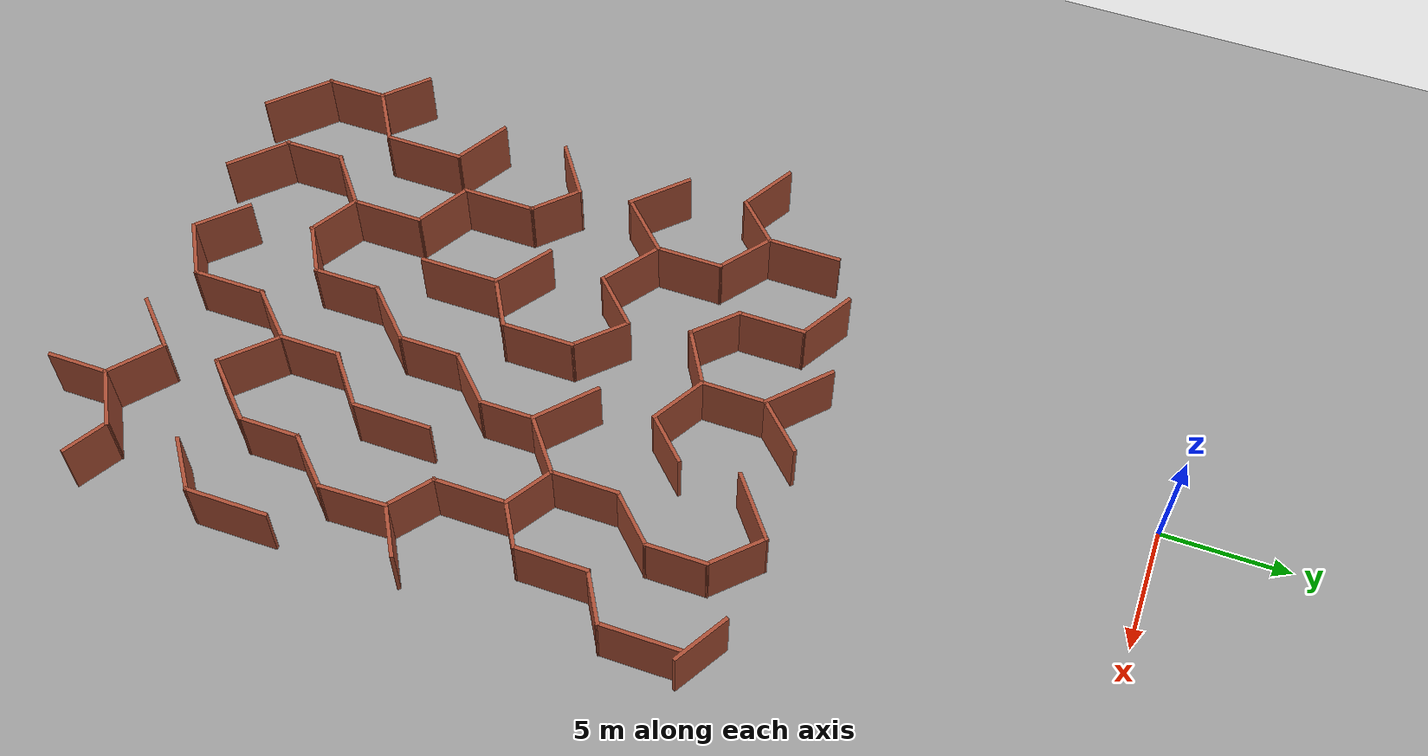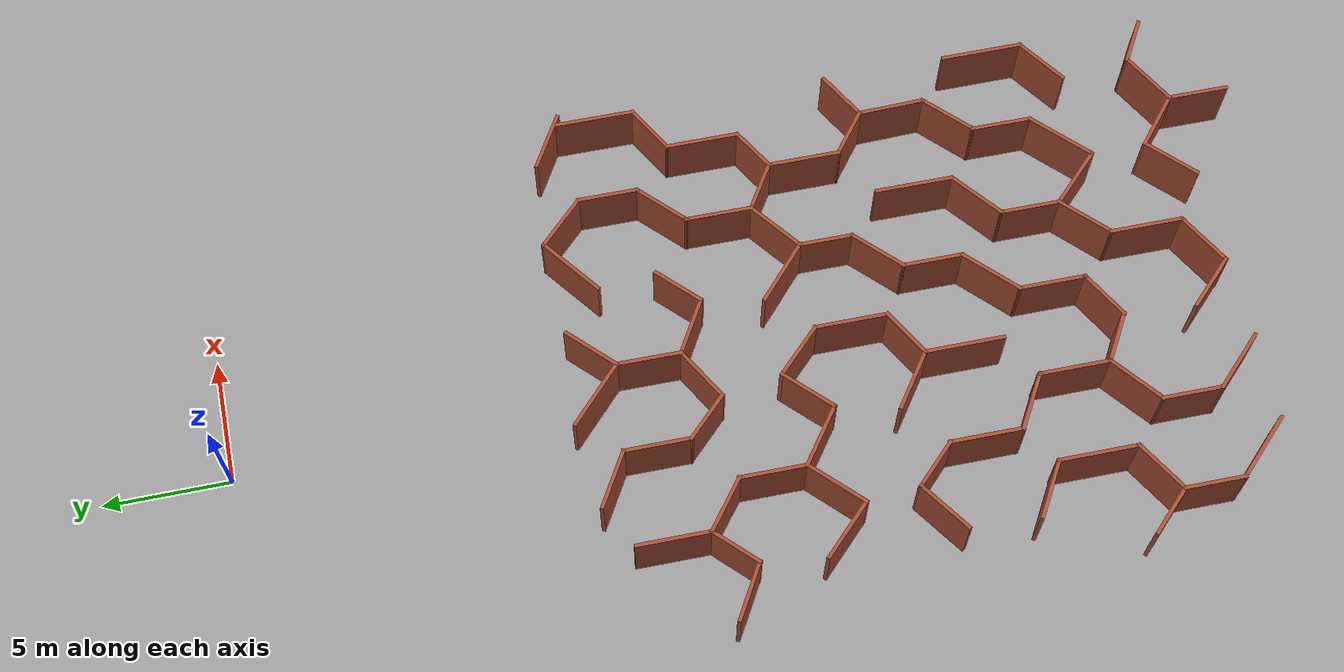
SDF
<sdf version="1.6">
 <world name="default">
  <model name="maze_rect_3">
   <pose>4e-06 -9.9e-05 0 0 -0 1.57001</pose>
   <link name="Wall_453">
    <collision name="Wall_453_Collision">
     <geometry><box><size>2.5 0.15 2.5</size></box></geometry>
     <pose>0 0 1.25 0 -0 0</pose>
    </collision>
    <visual name="Wall_453_Visual">
     <pose>0 0 1.25 0 -0 0</pose>
     <geometry><box><size>2.5 0.15 2.5</size></box></geometry>
     <material>
      <script><uri>file://media/materials/scripts/gazebo.material</uri><name>Gazebo/Bricks</name></script>
      <ambient>1 1 1 1</ambient>
     </material>
     <meta><layer>0</layer></meta>
    </visual>
    <pose>-14.284 -10.9723 0 0 -0 1.0472</pose>
   </link>
   <link name="Wall_460">
    <collision name="Wall_460_Collision">
     <geometry><box><size>3.25 0.15 2.5</size></box></geometry>
     <pose>0 0 1.25 0 -0 0</pose>
    </collision>
    <visual name="Wall_460_Visual">
     <pose>0 0 1.25 0 -0 0</pose>
     <geometry><box><size>3.25 0.15 2.5</size></box></geometry>
     <material>
      <script><uri>file://media/materials/scripts/gazebo.material</uri><name>Gazebo/Bricks</name></script>
      <ambient>1 1 1 1</ambient>
     </material>
     <meta><layer>0</layer></meta>
    </visual>
    <pose>-16.3331 -11.6233 0 0 -0 3.14159</pose>
   </link>
   <link name="Wall_461">
    <collision name="Wall_461_Collision">
     <geometry><box><size>2.25 0.15 2.5</size></box></geometry>
     <pose>0 0 1.25 0 -0 0</pose>
    </collision>
    <visual name="Wall_461_Visual">
     <pose>0 0 1.25 0 -0 0</pose>
     <geometry><box><size>2.25 0.15 2.5</size></box></geometry>
     <material>
      <script><uri>file://media/materials/scripts/gazebo.material</uri><name>Gazebo/Bricks</name></script>
      <ambient>1 1 1 1</ambient>
     </material>
     <meta><layer>0</layer></meta>
    </visual>
    <pose>-18.4081 -10.714 0 0 -0 2.0944</pose>
   </link>
   <link name="Wall_462">
    <collision name="Wall_462_Collision">
     <geometry><box><size>3 0.15 2.5</size></box></geometry>
     <pose>0 0 1.25 0 -0 0</pose>
    </collision>
    <visual name="Wall_462_Visual">
     <pose>0 0 1.25 0 -0 0</pose>
     <geometry><box><size>3 0.15 2.5</size></box></geometry>
     <material>
      <script><uri>file://media/materials/scripts/gazebo.material</uri><name>Gazebo/Bricks</name></script>
      <ambient>1 1 1 1</ambient>
     </material>
     <meta><layer>0</layer></meta>
    </visual>
    <pose>-20.3581 -9.80467 0 0 -0 3.14159</pose>
   </link>
   <link name="Wall_463">
    <collision name="Wall_463_Collision">
     <geometry><box><size>2.01531 0.15 2.5</size></box></geometry>
     <pose>0 0 1.25 0 -0 0</pose>
    </collision>
    <visual name="Wall_463_Visual">
     <pose>0 0 1.25 0 -0 0</pose>
     <geometry><box><size>2.01531 0.15 2.5</size></box></geometry>
     <material>
      <script><uri>file://media/materials/scripts/gazebo.material</uri><name>Gazebo/Bricks</name></script>
      <ambient>1 1 1 1</ambient>
     </material>
     <meta><layer>0</layer></meta>
    </visual>
    <pose>-22.2607 -9.0036 0 0 -0 2.10844</pose>
   </link>
   <link name="Wall_464">
    <collision name="Wall_464_Collision">
     <geometry><box><size>2.20335 0.15 2.5</size></box></geometry>
     <pose>0 0 1.25 0 -0 0</pose>
    </collision>
    <visual name="Wall_464_Visual">
     <pose>0 0 1.25 0 -0 0</pose>
     <geometry><box><size>2.20335 0.15 2.5</size></box></geometry>
     <material>
      <script><uri>file://media/materials/scripts/gazebo.material</uri><name>Gazebo/Bricks</name></script>
      <ambient>1 1 1 1</ambient>
     </material>
     <meta><layer>0</layer></meta>
    </visual>
    <pose>-22.1941 -7.33195 0 0 -0 1.01213</pose>
   </link>
   <link name="Wall_465">
    <collision name="Wall_465_Collision">
     <geometry><box><size>2.75 0.15 2.5</size></box></geometry>
     <pose>0 0 1.25 0 -0 0</pose>
    </collision>
    <visual name="Wall_465_Visual">
     <pose>0 0 1.25 0 -0 0</pose>
     <geometry><box><size>2.75 0.15 2.5</size></box></geometry>
     <material>
      <script><uri>file://media/materials/scripts/gazebo.material</uri><name>Gazebo/Bricks</name></script>
      <ambient>1 1 1 1</ambient>
     </material>
     <meta><layer>0</layer></meta>
    </visual>
    <pose>-20.3499 -6.46136 0 0 -0 0</pose>
   </link>
   <link name="Wall_466">
    <collision name="Wall_466_Collision">
     <geometry><box><size>2.5 0.15 2.5</size></box></geometry>
     <pose>0 0 1.25 0 -0 0</pose>
    </collision>
    <visual name="Wall_466_Visual">
     <pose>0 0 1.25 0 -0 0</pose>
     <geometry><box><size>2.5 0.15 2.5</size></box></geometry>
     <material>
      <script><uri>file://media/materials/scripts/gazebo.material</uri><name>Gazebo/Bricks</name></script>
      <ambient>1 1 1 1</ambient>
     </material>
     <meta><layer>0</layer></meta>
    </visual>
    <pose>-18.2191 -7.29221 0 0 -0 -0.785398</pose>
   </link>
   <link name="Wall_467">
    <collision name="Wall_467_Collision">
     <geometry><box><size>2.5 0.15 2.5</size></box></geometry>
     <pose>0 0 1.25 0 -0 0</pose>
    </collision>
    <visual name="Wall_467_Visual">
     <pose>0 0 1.25 0 -0 0</pose>
     <geometry><box><size>2.5 0.15 2.5</size></box></geometry>
     <material>
      <script><uri>file://media/materials/scripts/gazebo.material</uri><name>Gazebo/Bricks</name></script>
      <ambient>1 1 1 1</ambient>
     </material>
     <meta><layer>0</layer></meta>
    </visual>
    <pose>-16.2132 -8.12307 0 0 -0 0</pose>
   </link>
   <link name="Wall_468">
    <collision name="Wall_468_Collision">
     <geometry><box><size>2.5 0.15 2.5</size></box></geometry>
     <pose>0 0 1.25 0 -0 0</pose>
    </collision>
    <visual name="Wall_468_Visual">
     <pose>0 0 1.25 0 -0 0</pose>
     <geometry><box><size>2.5 0.15 2.5</size></box></geometry>
     <material>
      <script><uri>file://media/materials/scripts/gazebo.material</uri><name>Gazebo/Bricks</name></script>
      <ambient>1 1 1 1</ambient>
     </material>
     <meta><layer>0</layer></meta>
    </visual>
    <pose>-14.2074 -7.29221 0 0 -0 0.785398</pose>
   </link>
   <link name="Wall_482">
    <collision name="Wall_482_Collision">
     <geometry><box><size>2.97979 0.15 2.5</size></box></geometry>
     <pose>0 0 1.25 0 -0 0</pose>
    </collision>
    <visual name="Wall_482_Visual">
     <pose>0 0 1.25 0 -0 0</pose>
     <geometry><box><size>2.97979 0.15 2.5</size></box></geometry>
     <material>
      <script><uri>file://media/materials/scripts/gazebo.material</uri><name>Gazebo/Bricks</name></script>
      <ambient>1 1 1 1</ambient>
     </material>
     <meta><layer>0</layer></meta>
    </visual>
    <pose>-14.2385 -5.33934 0 0 -0 -0.915727</pose>
   </link>
   <link name="Wall_485">
    <collision name="Wall_485_Collision">
     <geometry><box><size>2.25 0.15 2.5</size></box></geometry>
     <pose>0 0 1.25 0 -0 0</pose>
    </collision>
    <visual name="Wall_485_Visual">
     <pose>0 0 1.25 0 -0 0</pose>
     <geometry><box><size>2.25 0.15 2.5</size></box></geometry>
     <material>
      <script><uri>file://media/materials/scripts/gazebo.material</uri><name>Gazebo/Bricks</name></script>
      <ambient>1 1 1 1</ambient>
     </material>
     <meta><layer>0</layer></meta>
    </visual>
    <pose>-18.1705 -3.68646 0 0 -0 2.35619</pose>
   </link>
   <link name="Wall_486">
    <collision name="Wall_486_Collision">
     <geometry><box><size>2.5 0.15 2.5</size></box></geometry>
     <pose>0 0 1.25 0 -0 0</pose>
    </collision>
    <visual name="Wall_486_Visual">
     <pose>0 0 1.25 0 -0 0</pose>
     <geometry><box><size>2.5 0.15 2.5</size></box></geometry>
     <material>
      <script><uri>file://media/materials/scripts/gazebo.material</uri><name>Gazebo/Bricks</name></script>
      <ambient>1 1 1 1</ambient>
     </material>
     <meta><layer>0</layer></meta>
    </visual>
    <pose>-18.3255 -1.92642 0 0 -0 1.0472</pose>
   </link>
   <link name="Wall_487">
    <collision name="Wall_487_Collision">
     <geometry><box><size>2.5 0.15 2.5</size></box></geometry>
     <pose>0 0 1.25 0 -0 0</pose>
    </collision>
    <visual name="Wall_487_Visual">
     <pose>0 0 1.25 0 -0 0</pose>
     <geometry><box><size>2.5 0.15 2.5</size></box></geometry>
     <material>
      <script><uri>file://media/materials/scripts/gazebo.material</uri><name>Gazebo/Bricks</name></script>
      <ambient>1 1 1 1</ambient>
     </material>
     <meta><layer>0</layer></meta>
    </visual>
    <pose>-18.3255 0.108739 0 0 -0 2.0944</pose>
   </link>
   <link name="Wall_488">
    <collision name="Wall_488_Collision">
     <geometry><box><size>2.25 0.15 2.5</size></box></geometry>
     <pose>0 0 1.25 0 -0 0</pose>
    </collision>
    <visual name="Wall_488_Visual">
     <pose>0 0 1.25 0 -0 0</pose>
     <geometry><box><size>2.25 0.15 2.5</size></box></geometry>
     <material>
      <script><uri>file://media/materials/scripts/gazebo.material</uri><name>Gazebo/Bricks</name></script>
      <ambient>1 1 1 1</ambient>
     </material>
     <meta><layer>0</layer></meta>
    </visual>
    <pose>-18.1705 1.86878 0 0 -0 0.785398</pose>
   </link>
   <link name="Wall_489">
    <collision name="Wall_489_Collision">
     <geometry><box><size>2.75 0.15 2.5</size></box></geometry>
     <pose>0 0 1.25 0 -0 0</pose>
    </collision>
    <visual name="Wall_489_Visual">
     <pose>0 0 1.25 0 -0 0</pose>
     <geometry><box><size>2.75 0.15 2.5</size></box></geometry>
     <material>
      <script><uri>file://media/materials/scripts/gazebo.material</uri><name>Gazebo/Bricks</name></script>
      <ambient>1 1 1 1</ambient>
     </material>
     <meta><layer>0</layer></meta>
    </visual>
    <pose>-16.1281 2.61124 0 0 -0 0</pose>
   </link>
   <link name="Wall_490">
    <collision name="Wall_490_Collision">
     <geometry><box><size>2.5 0.15 2.5</size></box></geometry>
     <pose>0 0 1.25 0 -0 0</pose>
    </collision>
    <visual name="Wall_490_Visual">
     <pose>0 0 1.25 0 -0 0</pose>
     <geometry><box><size>2.5 0.15 2.5</size></box></geometry>
     <material>
      <script><uri>file://media/materials/scripts/gazebo.material</uri><name>Gazebo/Bricks</name></script>
      <ambient>1 1 1 1</ambient>
     </material>
     <meta><layer>0</layer></meta>
    </visual>
    <pose>-14.2406 3.62882 0 0 -0 1.0472</pose>
   </link>
   <link name="Wall_503">
    <collision name="Wall_503_Collision">
     <geometry><box><size>2.5 0.15 2.5</size></box></geometry>
     <pose>0 0 1.25 0 -0 0</pose>
    </collision>
    <visual name="Wall_503_Visual">
     <pose>0 0 1.25 0 -0 0</pose>
     <geometry><box><size>2.5 0.15 2.5</size></box></geometry>
     <material>
      <script><uri>file://media/materials/scripts/gazebo.material</uri><name>Gazebo/Bricks</name></script>
      <ambient>1 1 1 1</ambient>
     </material>
     <meta><layer>0</layer></meta>
    </visual>
    <pose>-14.3964 -1.748 0 0 -0 2.35619</pose>
   </link>
   <link name="Wall_504">
    <collision name="Wall_504_Collision">
     <geometry><box><size>2.66072 0.15 2.5</size></box></geometry>
     <pose>0 0 1.25 0 -0 0</pose>
    </collision>
    <visual name="Wall_504_Visual">
     <pose>0 0 1.25 0 -0 0</pose>
     <geometry><box><size>2.66072 0.15 2.5</size></box></geometry>
     <material>
      <script><uri>file://media/materials/scripts/gazebo.material</uri><name>Gazebo/Bricks</name></script>
      <ambient>1 1 1 1</ambient>
     </material>
     <meta><layer>0</layer></meta>
    </visual>
    <pose>-16.4826 -0.912996 0 0 -0 3.13828</pose>
   </link>
   <link name="Wall_506">
    <collision name="Wall_506_Collision">
     <geometry><box><size>3.04862 0.15 2.5</size></box></geometry>
     <pose>0 0 1.25 0 -0 0</pose>
    </collision>
    <visual name="Wall_506_Visual">
     <pose>0 0 1.25 0 -0 0</pose>
     <geometry><box><size>3.04862 0.15 2.5</size></box></geometry>
     <material>
      <script><uri>file://media/materials/scripts/gazebo.material</uri><name>Gazebo/Bricks</name></script>
      <ambient>1 1 1 1</ambient>
     </material>
     <meta><layer>0</layer></meta>
    </visual>
    <pose>-14.2391 0.142993 0 0 -0 -2.3211</pose>
   </link>
   <link name="Wall_533">
    <collision name="Wall_533_Collision">
     <geometry><box><size>2.25 0.15 2.5</size></box></geometry>
     <pose>0 0 1.25 0 -0 0</pose>
    </collision>
    <visual name="Wall_533_Visual">
     <pose>0 0 1.25 0 -0 0</pose>
     <geometry><box><size>2.25 0.15 2.5</size></box></geometry>
     <material>
      <script><uri>file://media/materials/scripts/gazebo.material</uri><name>Gazebo/Bricks</name></script>
      <ambient>1 1 1 1</ambient>
     </material>
     <meta><layer>0</layer></meta>
    </visual>
    <pose>-26.2666 -10.6938 0 0 -0 2.0944</pose>
   </link>
   <link name="Wall_534">
    <collision name="Wall_534_Collision">
     <geometry><box><size>2.14672 0.15 2.5</size></box></geometry>
     <pose>0 0 1.25 0 -0 0</pose>
    </collision>
    <visual name="Wall_534_Visual">
     <pose>0 0 1.25 0 -0 0</pose>
     <geometry><box><size>2.14672 0.15 2.5</size></box></geometry>
     <material>
      <script><uri>file://media/materials/scripts/gazebo.material</uri><name>Gazebo/Bricks</name></script>
      <ambient>1 1 1 1</ambient>
     </material>
     <meta><layer>0</layer></meta>
    </visual>
    <pose>-26.1824 -8.99348 0 0 -0 0.914495</pose>
   </link>
   <link name="Wall_535">
    <collision name="Wall_535_Collision">
     <geometry><box><size>3 0.15 2.5</size></box></geometry>
     <pose>0 0 1.25 0 -0 0</pose>
    </collision>
    <visual name="Wall_535_Visual">
     <pose>0 0 1.25 0 -0 0</pose>
     <geometry><box><size>3 0.15 2.5</size></box></geometry>
     <material>
      <script><uri>file://media/materials/scripts/gazebo.material</uri><name>Gazebo/Bricks</name></script>
      <ambient>1 1 1 1</ambient>
     </material>
     <meta><layer>0</layer></meta>
    </visual>
    <pose>-24.1482 -8.20252 0 0 -0 0</pose>
   </link>
   <link name="Wall_537">
    <collision name="Wall_537_Collision">
     <geometry><box><size>2.5 0.15 2.5</size></box></geometry>
     <pose>0 0 1.25 0 -0 0</pose>
    </collision>
    <visual name="Wall_537_Visual">
     <pose>0 0 1.25 0 -0 0</pose>
     <geometry><box><size>2.5 0.15 2.5</size></box></geometry>
     <material>
      <script><uri>file://media/materials/scripts/gazebo.material</uri><name>Gazebo/Bricks</name></script>
      <ambient>1 1 1 1</ambient>
     </material>
     <meta><layer>0</layer></meta>
    </visual>
    <pose>-38.4579 0.179297 0 0 -0 -2.35619</pose>
   </link>
   <link name="Wall_538">
    <collision name="Wall_538_Collision">
     <geometry><box><size>2.5 0.15 2.5</size></box></geometry>
     <pose>0 0 1.25 0 -0 0</pose>
    </collision>
    <visual name="Wall_538_Visual">
     <pose>0 0 1.25 0 -0 0</pose>
     <geometry><box><size>2.5 0.15 2.5</size></box></geometry>
     <material>
      <script><uri>file://media/materials/scripts/gazebo.material</uri><name>Gazebo/Bricks</name></script>
      <ambient>1 1 1 1</ambient>
     </material>
     <meta><layer>0</layer></meta>
    </visual>
    <pose>-38.7013 -1.66913 0 0 -0 -1.0472</pose>
   </link>
   <link name="Wall_539">
    <collision name="Wall_539_Collision">
     <geometry><box><size>3 0.15 2.5</size></box></geometry>
     <pose>0 0 1.25 0 -0 0</pose>
    </collision>
    <visual name="Wall_539_Visual">
     <pose>0 0 1.25 0 -0 0</pose>
     <geometry><box><size>3 0.15 2.5</size></box></geometry>
     <material>
      <script><uri>file://media/materials/scripts/gazebo.material</uri><name>Gazebo/Bricks</name></script>
      <ambient>1 1 1 1</ambient>
     </material>
     <meta><layer>0</layer></meta>
    </visual>
    <pose>-36.6888 -2.68671 0 0 -0 0</pose>
   </link>
   <link name="Wall_540">
    <collision name="Wall_540_Collision">
     <geometry><box><size>2.5 0.15 2.5</size></box></geometry>
     <pose>0 0 1.25 0 -0 0</pose>
    </collision>
    <visual name="Wall_540_Visual">
     <pose>0 0 1.25 0 -0 0</pose>
     <geometry><box><size>2.5 0.15 2.5</size></box></geometry>
     <material>
      <script><uri>file://media/materials/scripts/gazebo.material</uri><name>Gazebo/Bricks</name></script>
      <ambient>1 1 1 1</ambient>
     </material>
     <meta><layer>0</layer></meta>
    </visual>
    <pose>-34.4329 -3.51756 0 0 -0 -0.785398</pose>
   </link>
   <link name="Wall_541">
    <collision name="Wall_541_Collision">
     <geometry><box><size>2.75 0.15 2.5</size></box></geometry>
     <pose>0 0 1.25 0 -0 0</pose>
    </collision>
    <visual name="Wall_541_Visual">
     <pose>0 0 1.25 0 -0 0</pose>
     <geometry><box><size>2.75 0.15 2.5</size></box></geometry>
     <material>
      <script><uri>file://media/materials/scripts/gazebo.material</uri><name>Gazebo/Bricks</name></script>
      <ambient>1 1 1 1</ambient>
     </material>
     <meta><layer>0</layer></meta>
    </visual>
    <pose>-34.5213 -5.26765 0 0 -0 -2.35619</pose>
   </link>
   <link name="Wall_542">
    <collision name="Wall_542_Collision">
     <geometry><box><size>3 0.15 2.5</size></box></geometry>
     <pose>0 0 1.25 0 -0 0</pose>
    </collision>
    <visual name="Wall_542_Visual">
     <pose>0 0 1.25 0 -0 0</pose>
     <geometry><box><size>3 0.15 2.5</size></box></geometry>
     <material>
      <script><uri>file://media/materials/scripts/gazebo.material</uri><name>Gazebo/Bricks</name></script>
      <ambient>1 1 1 1</ambient>
     </material>
     <meta><layer>0</layer></meta>
    </visual>
    <pose>-34.4329 -7.19452 0 0 -0 -0.785398</pose>
   </link>
   <link name="Wall_543">
    <collision name="Wall_543_Collision">
     <geometry><box><size>2.5 0.15 2.5</size></box></geometry>
     <pose>0 0 1.25 0 -0 0</pose>
    </collision>
    <visual name="Wall_543_Visual">
     <pose>0 0 1.25 0 -0 0</pose>
     <geometry><box><size>2.5 0.15 2.5</size></box></geometry>
     <material>
      <script><uri>file://media/materials/scripts/gazebo.material</uri><name>Gazebo/Bricks</name></script>
      <ambient>1 1 1 1</ambient>
     </material>
     <meta><layer>0</layer></meta>
    </visual>
    <pose>-32.2503 -8.20215 0 0 -0 0</pose>
   </link>
   <link name="Wall_544">
    <collision name="Wall_544_Collision">
     <geometry><box><size>2.5 0.15 2.5</size></box></geometry>
     <pose>0 0 1.25 0 -0 0</pose>
    </collision>
    <visual name="Wall_544_Visual">
     <pose>0 0 1.25 0 -0 0</pose>
     <geometry><box><size>2.5 0.15 2.5</size></box></geometry>
     <material>
      <script><uri>file://media/materials/scripts/gazebo.material</uri><name>Gazebo/Bricks</name></script>
      <ambient>1 1 1 1</ambient>
     </material>
     <meta><layer>0</layer></meta>
    </visual>
    <pose>-30.2444 -9.033 0 0 -0 -0.785398</pose>
   </link>
   <link name="Wall_545">
    <collision name="Wall_545_Collision">
     <geometry><box><size>2.77322 0.15 2.5</size></box></geometry>
     <pose>0 0 1.25 0 -0 0</pose>
    </collision>
    <visual name="Wall_545_Visual">
     <pose>0 0 1.25 0 -0 0</pose>
     <geometry><box><size>2.77322 0.15 2.5</size></box></geometry>
     <material>
      <script><uri>file://media/materials/scripts/gazebo.material</uri><name>Gazebo/Bricks</name></script>
      <ambient>1 1 1 1</ambient>
     </material>
     <meta><layer>0</layer></meta>
    </visual>
    <pose>-28.1026 -9.82414 0 0 -0 0.030278</pose>
   </link>
   <link name="Wall_547">
    <collision name="Wall_547_Collision">
     <geometry><box><size>3.15852 0.15 2.5</size></box></geometry>
     <pose>0 0 1.25 0 -0 0</pose>
    </collision>
    <visual name="Wall_547_Visual">
     <pose>0 0 1.25 0 -0 0</pose>
     <geometry><box><size>3.15852 0.15 2.5</size></box></geometry>
     <material>
      <script><uri>file://media/materials/scripts/gazebo.material</uri><name>Gazebo/Bricks</name></script>
      <ambient>1 1 1 1</ambient>
     </material>
     <meta><layer>0</layer></meta>
    </visual>
    <pose>-28.1709 -6.21856 0 0 -0 3.14159</pose>
   </link>
   <link name="Wall_548">
    <collision name="Wall_548_Collision">
     <geometry><box><size>2.56699 0.15 2.5</size></box></geometry>
     <pose>0 0 1.25 0 -0 0</pose>
    </collision>
    <visual name="Wall_548_Visual">
     <pose>0 0 1.25 0 -0 0</pose>
     <geometry><box><size>2.56699 0.15 2.5</size></box></geometry>
     <material>
      <script><uri>file://media/materials/scripts/gazebo.material</uri><name>Gazebo/Bricks</name></script>
      <ambient>1 1 1 1</ambient>
     </material>
     <meta><layer>0</layer></meta>
    </visual>
    <pose>-30.4865 -5.28349 0 0 -0 2.25685</pose>
   </link>
   <link name="Wall_549">
    <collision name="Wall_549_Collision">
     <geometry><box><size>2.5 0.15 2.5</size></box></geometry>
     <pose>0 0 1.25 0 -0 0</pose>
    </collision>
    <visual name="Wall_549_Visual">
     <pose>0 0 1.25 0 -0 0</pose>
     <geometry><box><size>2.5 0.15 2.5</size></box></geometry>
     <material>
      <script><uri>file://media/materials/scripts/gazebo.material</uri><name>Gazebo/Bricks</name></script>
      <ambient>1 1 1 1</ambient>
     </material>
     <meta><layer>0</layer></meta>
    </visual>
    <pose>-32.4271 -4.34841 0 0 -0 3.14159</pose>
   </link>
   <link name="Wall_551">
    <collision name="Wall_551_Collision">
     <geometry><box><size>2.38551 0.15 2.5</size></box></geometry>
     <pose>0 0 1.25 0 -0 0</pose>
    </collision>
    <visual name="Wall_551_Visual">
     <pose>0 0 1.25 0 -0 0</pose>
     <geometry><box><size>2.38551 0.15 2.5</size></box></geometry>
     <material>
      <script><uri>file://media/materials/scripts/gazebo.material</uri><name>Gazebo/Bricks</name></script>
      <ambient>1 1 1 1</ambient>
     </material>
     <meta><layer>0</layer></meta>
    </visual>
    <pose>-34.5618 -10.7081 0 0 -0 -0.950197</pose>
   </link>
   <link name="Wall_557">
    <collision name="Wall_557_Collision">
     <geometry><box><size>3.33697 0.15 2.5</size></box></geometry>
     <pose>0 0 1.25 0 -0 0</pose>
    </collision>
    <visual name="Wall_557_Visual">
     <pose>0 0 1.25 0 -0 0</pose>
     <geometry><box><size>3.33697 0.15 2.5</size></box></geometry>
     <material>
      <script><uri>file://media/materials/scripts/gazebo.material</uri><name>Gazebo/Bricks</name></script>
      <ambient>1 1 1 1</ambient>
     </material>
     <meta><layer>0</layer></meta>
    </visual>
    <pose>-32.3183 -11.6124 0 0 -0 -3.13847</pose>
   </link>
   <link name="Wall_562">
    <collision name="Wall_562_Collision">
     <geometry><box><size>2.5 0.15 2.5</size></box></geometry>
     <pose>0 0 1.25 0 -0 0</pose>
    </collision>
    <visual name="Wall_562_Visual">
     <pose>0 0 1.25 0 -0 0</pose>
     <geometry><box><size>2.5 0.15 2.5</size></box></geometry>
     <material>
      <script><uri>file://media/materials/scripts/gazebo.material</uri><name>Gazebo/Bricks</name></script>
      <ambient>1 1 1 1</ambient>
     </material>
     <meta><layer>0</layer></meta>
    </visual>
    <pose>-40.3639 -8.04688 0 0 -0 0</pose>
   </link>
   <link name="Wall_563">
    <collision name="Wall_563_Collision">
     <geometry><box><size>2.5 0.15 2.5</size></box></geometry>
     <pose>0 0 1.25 0 -0 0</pose>
    </collision>
    <visual name="Wall_563_Visual">
     <pose>0 0 1.25 0 -0 0</pose>
     <geometry><box><size>2.5 0.15 2.5</size></box></geometry>
     <material>
      <script><uri>file://media/materials/scripts/gazebo.material</uri><name>Gazebo/Bricks</name></script>
      <ambient>1 1 1 1</ambient>
     </material>
     <meta><layer>0</layer></meta>
    </visual>
    <pose>-38.6014 -9.06446 0 0 -0 -1.0472</pose>
   </link>
   <link name="Wall_564">
    <collision name="Wall_564_Collision">
     <geometry><box><size>2 0.15 2.5</size></box></geometry>
     <pose>0 0 1.25 0 -0 0</pose>
    </collision>
    <visual name="Wall_564_Visual">
     <pose>0 0 1.25 0 -0 0</pose>
     <geometry><box><size>2 0.15 2.5</size></box></geometry>
     <material>
      <script><uri>file://media/materials/scripts/gazebo.material</uri><name>Gazebo/Bricks</name></script>
      <ambient>1 1 1 1</ambient>
     </material>
     <meta><layer>0</layer></meta>
    </visual>
    <pose>-38.4764 -10.8831 0 0 -0 -2.0944</pose>
   </link>
   <link name="Wall_575">
    <collision name="Wall_575_Collision">
     <geometry><box><size>2.5 0.15 2.5</size></box></geometry>
     <pose>0 0 1.25 0 -0 0</pose>
    </collision>
    <visual name="Wall_575_Visual">
     <pose>0 0 1.25 0 -0 0</pose>
     <geometry><box><size>2.5 0.15 2.5</size></box></geometry>
     <material>
      <script><uri>file://media/materials/scripts/gazebo.material</uri><name>Gazebo/Bricks</name></script>
      <ambient>1 1 1 1</ambient>
     </material>
     <meta><layer>0</layer></meta>
    </visual>
    <pose>-38.4718 -5.37446 0 0 -0 -0.785398</pose>
   </link>
   <link name="Wall_576">
    <collision name="Wall_576_Collision">
     <geometry><box><size>2.55568 0.15 2.5</size></box></geometry>
     <pose>0 0 1.25 0 -0 0</pose>
    </collision>
    <visual name="Wall_576_Visual">
     <pose>0 0 1.25 0 -0 0</pose>
     <geometry><box><size>2.55568 0.15 2.5</size></box></geometry>
     <material>
      <script><uri>file://media/materials/scripts/gazebo.material</uri><name>Gazebo/Bricks</name></script>
      <ambient>1 1 1 1</ambient>
     </material>
     <meta><layer>0</layer></meta>
    </visual>
    <pose>-38.4149 -7.12609 0 0 -0 -2.26975</pose>
   </link>
   <link name="Wall_615">
    <collision name="Wall_615_Collision">
     <geometry><box><size>3 0.15 2.5</size></box></geometry>
     <pose>0 0 1.25 0 -0 0</pose>
    </collision>
    <visual name="Wall_615_Visual">
     <pose>0 0 1.25 0 -0 0</pose>
     <geometry><box><size>3 0.15 2.5</size></box></geometry>
     <material>
      <script><uri>file://media/materials/scripts/gazebo.material</uri><name>Gazebo/Bricks</name></script>
      <ambient>1 1 1 1</ambient>
     </material>
     <meta><layer>0</layer></meta>
    </visual>
    <pose>-38.3984 7.14209 0 0 -0 0.785398</pose>
   </link>
   <link name="Wall_616">
    <collision name="Wall_616_Collision">
     <geometry><box><size>2.5 0.15 2.5</size></box></geometry>
     <pose>0 0 1.25 0 -0 0</pose>
    </collision>
    <visual name="Wall_616_Visual">
     <pose>0 0 1.25 0 -0 0</pose>
     <geometry><box><size>2.5 0.15 2.5</size></box></geometry>
     <material>
      <script><uri>file://media/materials/scripts/gazebo.material</uri><name>Gazebo/Bricks</name></script>
      <ambient>1 1 1 1</ambient>
     </material>
     <meta><layer>0</layer></meta>
    </visual>
    <pose>-36.2158 8.14972 0 0 -0 0</pose>
   </link>
   <link name="Wall_617">
    <collision name="Wall_617_Collision">
     <geometry><box><size>2.25 0.15 2.5</size></box></geometry>
     <pose>0 0 1.25 0 -0 0</pose>
    </collision>
    <visual name="Wall_617_Visual">
     <pose>0 0 1.25 0 -0 0</pose>
     <geometry><box><size>2.25 0.15 2.5</size></box></geometry>
     <material>
      <script><uri>file://media/materials/scripts/gazebo.material</uri><name>Gazebo/Bricks</name></script>
      <ambient>1 1 1 1</ambient>
     </material>
     <meta><layer>0</layer></meta>
    </visual>
    <pose>-34.2983 8.89218 0 0 -0 0.785398</pose>
   </link>
   <link name="Wall_620">
    <collision name="Wall_620_Collision">
     <geometry><box><size>2.5 0.15 2.5</size></box></geometry>
     <pose>0 0 1.25 0 -0 0</pose>
    </collision>
    <visual name="Wall_620_Visual">
     <pose>0 0 1.25 0 -0 0</pose>
     <geometry><box><size>2.5 0.15 2.5</size></box></geometry>
     <material>
      <script><uri>file://media/materials/scripts/gazebo.material</uri><name>Gazebo/Bricks</name></script>
      <ambient>1 1 1 1</ambient>
     </material>
     <meta><layer>0</layer></meta>
    </visual>
    <pose>-30.1495 7.18688 0 0 -0 -2.0944</pose>
   </link>
   <link name="Wall_621">
    <collision name="Wall_621_Collision">
     <geometry><box><size>3.25 0.15 2.5</size></box></geometry>
     <pose>0 0 1.25 0 -0 0</pose>
    </collision>
    <visual name="Wall_621_Visual">
     <pose>0 0 1.25 0 -0 0</pose>
     <geometry><box><size>3.25 0.15 2.5</size></box></geometry>
     <material>
      <script><uri>file://media/materials/scripts/gazebo.material</uri><name>Gazebo/Bricks</name></script>
      <ambient>1 1 1 1</ambient>
     </material>
     <meta><layer>0</layer></meta>
    </visual>
    <pose>-32.287 6.1693 0 0 -0 3.14159</pose>
   </link>
   <link name="Wall_622">
    <collision name="Wall_622_Collision">
     <geometry><box><size>2.46755 0.15 2.5</size></box></geometry>
     <pose>0 0 1.25 0 -0 0</pose>
    </collision>
    <visual name="Wall_622_Visual">
     <pose>0 0 1.25 0 -0 0</pose>
     <geometry><box><size>2.46755 0.15 2.5</size></box></geometry>
     <material>
      <script><uri>file://media/materials/scripts/gazebo.material</uri><name>Gazebo/Bricks</name></script>
      <ambient>1 1 1 1</ambient>
     </material>
     <meta><layer>0</layer></meta>
    </visual>
    <pose>-34.4389 7.15951 0 0 -0 2.11695</pose>
   </link>
   <link name="Wall_636">
    <collision name="Wall_636_Collision">
     <geometry><box><size>2.88745 0.15 2.5</size></box></geometry>
     <pose>0 0 1.25 0 -0 0</pose>
    </collision>
    <visual name="Wall_636_Visual">
     <pose>0 0 1.25 0 -0 0</pose>
     <geometry><box><size>2.88745 0.15 2.5</size></box></geometry>
     <material>
      <script><uri>file://media/materials/scripts/gazebo.material</uri><name>Gazebo/Bricks</name></script>
      <ambient>1 1 1 1</ambient>
     </material>
     <meta><layer>0</layer></meta>
    </visual>
    <pose>-22.2573 -3.49538 0 0 -0 -2.30521</pose>
   </link>
   <link name="Wall_637">
    <collision name="Wall_637_Collision">
     <geometry><box><size>2.62535 0.15 2.5</size></box></geometry>
     <pose>0 0 1.25 0 -0 0</pose>
    </collision>
    <visual name="Wall_637_Visual">
     <pose>0 0 1.25 0 -0 0</pose>
     <geometry><box><size>2.62535 0.15 2.5</size></box></geometry>
     <material>
      <script><uri>file://media/materials/scripts/gazebo.material</uri><name>Gazebo/Bricks</name></script>
      <ambient>1 1 1 1</ambient>
     </material>
     <meta><layer>0</layer></meta>
    </visual>
    <pose>-22.4122 -5.48632 0 0 -0 -0.907234</pose>
   </link>
   <link name="Wall_642">
    <collision name="Wall_642_Collision">
     <geometry><box><size>2.75 0.15 2.5</size></box></geometry>
     <pose>0 0 1.25 0 -0 0</pose>
    </collision>
    <visual name="Wall_642_Visual">
     <pose>0 0 1.25 0 -0 0</pose>
     <geometry><box><size>2.75 0.15 2.5</size></box></geometry>
     <material>
      <script><uri>file://media/materials/scripts/gazebo.material</uri><name>Gazebo/Bricks</name></script>
      <ambient>1 1 1 1</ambient>
     </material>
     <meta><layer>0</layer></meta>
    </visual>
    <pose>-38.5307 3.58517 0 0 -0 0.785398</pose>
   </link>
   <link name="Wall_643">
    <collision name="Wall_643_Collision">
     <geometry><box><size>2.5 0.15 2.5</size></box></geometry>
     <pose>0 0 1.25 0 -0 0</pose>
    </collision>
    <visual name="Wall_643_Visual">
     <pose>0 0 1.25 0 -0 0</pose>
     <geometry><box><size>2.5 0.15 2.5</size></box></geometry>
     <material>
      <script><uri>file://media/materials/scripts/gazebo.material</uri><name>Gazebo/Bricks</name></script>
      <ambient>1 1 1 1</ambient>
     </material>
     <meta><layer>0</layer></meta>
    </visual>
    <pose>-36.4364 4.50441 0 0 -0 0</pose>
   </link>
   <link name="Wall_644">
    <collision name="Wall_644_Collision">
     <geometry><box><size>2.57675 0.15 2.5</size></box></geometry>
     <pose>0 0 1.25 0 -0 0</pose>
    </collision>
    <visual name="Wall_644_Visual">
     <pose>0 0 1.25 0 -0 0</pose>
     <geometry><box><size>2.57675 0.15 2.5</size></box></geometry>
     <material>
      <script><uri>file://media/materials/scripts/gazebo.material</uri><name>Gazebo/Bricks</name></script>
      <ambient>1 1 1 1</ambient>
     </material>
     <meta><layer>0</layer></meta>
    </visual>
    <pose>-34.4931 3.56531 0 0 -0 -0.885071</pose>
   </link>
   <link name="Wall_645">
    <collision name="Wall_645_Collision">
     <geometry><box><size>2.25 0.15 2.5</size></box></geometry>
     <pose>0 0 1.25 0 -0 0</pose>
    </collision>
    <visual name="Wall_645_Visual">
     <pose>0 0 1.25 0 -0 0</pose>
     <geometry><box><size>2.25 0.15 2.5</size></box></geometry>
     <material>
      <script><uri>file://media/materials/scripts/gazebo.material</uri><name>Gazebo/Bricks</name></script>
      <ambient>1 1 1 1</ambient>
     </material>
     <meta><layer>0</layer></meta>
    </visual>
    <pose>-34.2497 1.71688 0 0 -0 -2.0944</pose>
   </link>
   <link name="Wall_646">
    <collision name="Wall_646_Collision">
     <geometry><box><size>2.25 0.15 2.5</size></box></geometry>
     <pose>0 0 1.25 0 -0 0</pose>
    </collision>
    <visual name="Wall_646_Visual">
     <pose>0 0 1.25 0 -0 0</pose>
     <geometry><box><size>2.25 0.15 2.5</size></box></geometry>
     <material>
      <script><uri>file://media/materials/scripts/gazebo.material</uri><name>Gazebo/Bricks</name></script>
      <ambient>1 1 1 1</ambient>
     </material>
     <meta><layer>0</layer></meta>
    </visual>
    <pose>-34.2497 -0.101774 0 0 -0 -1.0472</pose>
   </link>
   <link name="Wall_647">
    <collision name="Wall_647_Collision">
     <geometry><box><size>2.75 0.15 2.5</size></box></geometry>
     <pose>0 0 1.25 0 -0 0</pose>
    </collision>
    <visual name="Wall_647_Visual">
     <pose>0 0 1.25 0 -0 0</pose>
     <geometry><box><size>2.75 0.15 2.5</size></box></geometry>
     <material>
      <script><uri>file://media/materials/scripts/gazebo.material</uri><name>Gazebo/Bricks</name></script>
      <ambient>1 1 1 1</ambient>
     </material>
     <meta><layer>0</layer></meta>
    </visual>
    <pose>-32.4247 -1.0111 0 0 -0 0</pose>
   </link>
   <link name="Wall_648">
    <collision name="Wall_648_Collision">
     <geometry><box><size>2.75 0.15 2.5</size></box></geometry>
     <pose>0 0 1.25 0 -0 0</pose>
    </collision>
    <visual name="Wall_648_Visual">
     <pose>0 0 1.25 0 -0 0</pose>
     <geometry><box><size>2.75 0.15 2.5</size></box></geometry>
     <material>
      <script><uri>file://media/materials/scripts/gazebo.material</uri><name>Gazebo/Bricks</name></script>
      <ambient>1 1 1 1</ambient>
     </material>
     <meta><layer>0</layer></meta>
    </visual>
    <pose>-30.2055 -1.93034 0 0 -0 -0.785398</pose>
   </link>
   <link name="Wall_649">
    <collision name="Wall_649_Collision">
     <geometry><box><size>2.5 0.15 2.5</size></box></geometry>
     <pose>0 0 1.25 0 -0 0</pose>
    </collision>
    <visual name="Wall_649_Visual">
     <pose>0 0 1.25 0 -0 0</pose>
     <geometry><box><size>2.5 0.15 2.5</size></box></geometry>
     <material>
      <script><uri>file://media/materials/scripts/gazebo.material</uri><name>Gazebo/Bricks</name></script>
      <ambient>1 1 1 1</ambient>
     </material>
     <meta><layer>0</layer></meta>
    </visual>
    <pose>-28.1113 -2.84958 0 0 -0 0</pose>
   </link>
   <link name="Wall_650">
    <collision name="Wall_650_Collision">
     <geometry><box><size>2.5 0.15 2.5</size></box></geometry>
     <pose>0 0 1.25 0 -0 0</pose>
    </collision>
    <visual name="Wall_650_Visual">
     <pose>0 0 1.25 0 -0 0</pose>
     <geometry><box><size>2.5 0.15 2.5</size></box></geometry>
     <material>
      <script><uri>file://media/materials/scripts/gazebo.material</uri><name>Gazebo/Bricks</name></script>
      <ambient>1 1 1 1</ambient>
     </material>
     <meta><layer>0</layer></meta>
    </visual>
    <pose>-26.1054 -3.68043 0 0 -0 -0.785398</pose>
   </link>
   <link name="Wall_651">
    <collision name="Wall_651_Collision">
     <geometry><box><size>2.25 0.15 2.5</size></box></geometry>
     <pose>0 0 1.25 0 -0 0</pose>
    </collision>
    <visual name="Wall_651_Visual">
     <pose>0 0 1.25 0 -0 0</pose>
     <geometry><box><size>2.25 0.15 2.5</size></box></geometry>
     <material>
      <script><uri>file://media/materials/scripts/gazebo.material</uri><name>Gazebo/Bricks</name></script>
      <ambient>1 1 1 1</ambient>
     </material>
     <meta><layer>0</layer></meta>
    </visual>
    <pose>-24.2246 -4.51128 0 0 -0 0</pose>
   </link>
   <link name="Wall_670">
    <collision name="Wall_670_Collision">
     <geometry><box><size>2.5158 0.15 2.5</size></box></geometry>
     <pose>0 0 1.25 0 -0 0</pose>
    </collision>
    <visual name="Wall_670_Visual">
     <pose>0 0 1.25 0 -0 0</pose>
     <geometry><box><size>2.5158 0.15 2.5</size></box></geometry>
     <material>
      <script><uri>file://media/materials/scripts/gazebo.material</uri><name>Gazebo/Bricks</name></script>
      <ambient>1 1 1 1</ambient>
     </material>
     <meta><layer>0</layer></meta>
    </visual>
    <pose>-26.1109 7.11357 0 0 -0 -0.958404</pose>
   </link>
   <link name="Wall_671">
    <collision name="Wall_671_Collision">
     <geometry><box><size>2.25 0.15 2.5</size></box></geometry>
     <pose>0 0 1.25 0 -0 0</pose>
    </collision>
    <visual name="Wall_671_Visual">
     <pose>0 0 1.25 0 -0 0</pose>
     <geometry><box><size>2.25 0.15 2.5</size></box></geometry>
     <material>
      <script><uri>file://media/materials/scripts/gazebo.material</uri><name>Gazebo/Bricks</name></script>
      <ambient>1 1 1 1</ambient>
     </material>
     <meta><layer>0</layer></meta>
    </visual>
    <pose>-26.1734 5.40317 0 0 -0 -2.35619</pose>
   </link>
   <link name="Wall_672">
    <collision name="Wall_672_Collision">
     <geometry><box><size>3 0.15 2.5</size></box></geometry>
     <pose>0 0 1.25 0 -0 0</pose>
    </collision>
    <visual name="Wall_672_Visual">
     <pose>0 0 1.25 0 -0 0</pose>
     <geometry><box><size>3 0.15 2.5</size></box></geometry>
     <material>
      <script><uri>file://media/materials/scripts/gazebo.material</uri><name>Gazebo/Bricks</name></script>
      <ambient>1 1 1 1</ambient>
     </material>
     <meta><layer>0</layer></meta>
    </visual>
    <pose>-28.3409 4.6607 0 0 -0 3.14159</pose>
   </link>
   <link name="Wall_673">
    <collision name="Wall_673_Collision">
     <geometry><box><size>2.5 0.15 2.5</size></box></geometry>
     <pose>0 0 1.25 0 -0 0</pose>
    </collision>
    <visual name="Wall_673_Visual">
     <pose>0 0 1.25 0 -0 0</pose>
     <geometry><box><size>2.5 0.15 2.5</size></box></geometry>
     <material>
      <script><uri>file://media/materials/scripts/gazebo.material</uri><name>Gazebo/Bricks</name></script>
      <ambient>1 1 1 1</ambient>
     </material>
     <meta><layer>0</layer></meta>
    </visual>
    <pose>-30.3534 3.64312 0 0 -0 -2.0944</pose>
   </link>
   <link name="Wall_676">
    <collision name="Wall_676_Collision">
     <geometry><box><size>2.93386 0.15 2.5</size></box></geometry>
     <pose>0 0 1.25 0 -0 0</pose>
    </collision>
    <visual name="Wall_676_Visual">
     <pose>0 0 1.25 0 -0 0</pose>
     <geometry><box><size>2.93386 0.15 2.5</size></box></geometry>
     <material>
      <script><uri>file://media/materials/scripts/gazebo.material</uri><name>Gazebo/Bricks</name></script>
      <ambient>1 1 1 1</ambient>
     </material>
     <meta><layer>0</layer></meta>
    </visual>
    <pose>-32.3328 2.62588 0 0 -0 3.14135</pose>
   </link>
   <link name="Wall_678">
    <collision name="Wall_678_Collision">
     <geometry><box><size>3 0.15 2.5</size></box></geometry>
     <pose>0 0 1.25 0 -0 0</pose>
    </collision>
    <visual name="Wall_678_Visual">
     <pose>0 0 1.25 0 -0 0</pose>
     <geometry><box><size>3 0.15 2.5</size></box></geometry>
     <material>
      <script><uri>file://media/materials/scripts/gazebo.material</uri><name>Gazebo/Bricks</name></script>
      <ambient>1 1 1 1</ambient>
     </material>
     <meta><layer>0</layer></meta>
    </visual>
    <pose>-16.0173 6.36975 0 0 -0 3.14159</pose>
   </link>
   <link name="Wall_679">
    <collision name="Wall_679_Collision">
     <geometry><box><size>2.25 0.15 2.5</size></box></geometry>
     <pose>0 0 1.25 0 -0 0</pose>
    </collision>
    <visual name="Wall_679_Visual">
     <pose>0 0 1.25 0 -0 0</pose>
     <geometry><box><size>2.25 0.15 2.5</size></box></geometry>
     <material>
      <script><uri>file://media/materials/scripts/gazebo.material</uri><name>Gazebo/Bricks</name></script>
      <ambient>1 1 1 1</ambient>
     </material>
     <meta><layer>0</layer></meta>
    </visual>
    <pose>-18.1847 7.11221 0 0 -0 2.35619</pose>
   </link>
   <link name="Wall_680">
    <collision name="Wall_680_Collision">
     <geometry><box><size>2.5 0.15 2.5</size></box></geometry>
     <pose>0 0 1.25 0 -0 0</pose>
    </collision>
    <visual name="Wall_680_Visual">
     <pose>0 0 1.25 0 -0 0</pose>
     <geometry><box><size>2.5 0.15 2.5</size></box></geometry>
     <material>
      <script><uri>file://media/materials/scripts/gazebo.material</uri><name>Gazebo/Bricks</name></script>
      <ambient>1 1 1 1</ambient>
     </material>
     <meta><layer>0</layer></meta>
    </visual>
    <pose>-18.3397 8.87225 0 0 -0 1.0472</pose>
   </link>
   <link name="Wall_685">
    <collision name="Wall_685_Collision">
     <geometry><box><size>2.75 0.15 2.5</size></box></geometry>
     <pose>0 0 1.25 0 -0 0</pose>
    </collision>
    <visual name="Wall_685_Visual">
     <pose>0 0 1.25 0 -0 0</pose>
     <geometry><box><size>2.75 0.15 2.5</size></box></geometry>
     <material>
      <script><uri>file://media/materials/scripts/gazebo.material</uri><name>Gazebo/Bricks</name></script>
      <ambient>1 1 1 1</ambient>
     </material>
     <meta><layer>0</layer></meta>
    </visual>
    <pose>-22.3837 7.26325 0 0 -0 -2.35619</pose>
   </link>
   <link name="Wall_686">
    <collision name="Wall_686_Collision">
     <geometry><box><size>2.75 0.15 2.5</size></box></geometry>
     <pose>0 0 1.25 0 -0 0</pose>
    </collision>
    <visual name="Wall_686_Visual">
     <pose>0 0 1.25 0 -0 0</pose>
     <geometry><box><size>2.75 0.15 2.5</size></box></geometry>
     <material>
      <script><uri>file://media/materials/scripts/gazebo.material</uri><name>Gazebo/Bricks</name></script>
      <ambient>1 1 1 1</ambient>
     </material>
     <meta><layer>0</layer></meta>
    </visual>
    <pose>-22.3837 5.42478 0 0 -0 -0.785398</pose>
   </link>
   <link name="Wall_687">
    <collision name="Wall_687_Collision">
     <geometry><box><size>2.75 0.15 2.5</size></box></geometry>
     <pose>0 0 1.25 0 -0 0</pose>
    </collision>
    <visual name="Wall_687_Visual">
     <pose>0 0 1.25 0 -0 0</pose>
     <geometry><box><size>2.75 0.15 2.5</size></box></geometry>
     <material>
      <script><uri>file://media/materials/scripts/gazebo.material</uri><name>Gazebo/Bricks</name></script>
      <ambient>1 1 1 1</ambient>
     </material>
     <meta><layer>0</layer></meta>
    </visual>
    <pose>-20.1645 4.50554 0 0 -0 0</pose>
   </link>
   <link name="Wall_688">
    <collision name="Wall_688_Collision">
     <geometry><box><size>2.49477 0.15 2.5</size></box></geometry>
     <pose>0 0 1.25 0 -0 0</pose>
    </collision>
    <visual name="Wall_688_Visual">
     <pose>0 0 1.25 0 -0 0</pose>
     <geometry><box><size>2.49477 0.15 2.5</size></box></geometry>
     <material>
      <script><uri>file://media/materials/scripts/gazebo.material</uri><name>Gazebo/Bricks</name></script>
      <ambient>1 1 1 1</ambient>
     </material>
     <meta><layer>0</layer></meta>
    </visual>
    <pose>-18.1534 5.43764 0 0 -0 0.919089</pose>
   </link>
   <link name="Wall_690">
    <collision name="Wall_690_Collision">
     <geometry><box><size>3.25 0.15 2.5</size></box></geometry>
     <pose>0 0 1.25 0 -0 0</pose>
    </collision>
    <visual name="Wall_690_Visual">
     <pose>0 0 1.25 0 -0 0</pose>
     <geometry><box><size>3.25 0.15 2.5</size></box></geometry>
     <material>
      <script><uri>file://media/materials/scripts/gazebo.material</uri><name>Gazebo/Bricks</name></script>
      <ambient>1 1 1 1</ambient>
     </material>
     <meta><layer>0</layer></meta>
    </visual>
    <pose>-28.4371 0.877391 0 0 -0 0</pose>
   </link>
   <link name="Wall_691">
    <collision name="Wall_691_Collision">
     <geometry><box><size>2.25 0.15 2.5</size></box></geometry>
     <pose>0 0 1.25 0 -0 0</pose>
    </collision>
    <visual name="Wall_691_Visual">
     <pose>0 0 1.25 0 -0 0</pose>
     <geometry><box><size>2.25 0.15 2.5</size></box></geometry>
     <material>
      <script><uri>file://media/materials/scripts/gazebo.material</uri><name>Gazebo/Bricks</name></script>
      <ambient>1 1 1 1</ambient>
     </material>
     <meta><layer>0</layer></meta>
    </visual>
    <pose>-26.3621 -0.031935 0 0 -0 -1.0472</pose>
   </link>
   <link name="Wall_692">
    <collision name="Wall_692_Collision">
     <geometry><box><size>3 0.15 2.5</size></box></geometry>
     <pose>0 0 1.25 0 -0 0</pose>
    </collision>
    <visual name="Wall_692_Visual">
     <pose>0 0 1.25 0 -0 0</pose>
     <geometry><box><size>3 0.15 2.5</size></box></geometry>
     <material>
      <script><uri>file://media/materials/scripts/gazebo.material</uri><name>Gazebo/Bricks</name></script>
      <ambient>1 1 1 1</ambient>
     </material>
     <meta><layer>0</layer></meta>
    </visual>
    <pose>-24.4121 -0.941262 0 0 -0 0</pose>
   </link>
   <link name="Wall_693">
    <collision name="Wall_693_Collision">
     <geometry><box><size>2.5 0.15 2.5</size></box></geometry>
     <pose>0 0 1.25 0 -0 0</pose>
    </collision>
    <visual name="Wall_693_Visual">
     <pose>0 0 1.25 0 -0 0</pose>
     <geometry><box><size>2.5 0.15 2.5</size></box></geometry>
     <material>
      <script><uri>file://media/materials/scripts/gazebo.material</uri><name>Gazebo/Bricks</name></script>
      <ambient>1 1 1 1</ambient>
     </material>
     <meta><layer>0</layer></meta>
    </visual>
    <pose>-22.1562 -0.110412 0 0 -0 0.785398</pose>
   </link>
   <link name="Wall_694">
    <collision name="Wall_694_Collision">
     <geometry><box><size>2.5 0.15 2.5</size></box></geometry>
     <pose>0 0 1.25 0 -0 0</pose>
    </collision>
    <visual name="Wall_694_Visual">
     <pose>0 0 1.25 0 -0 0</pose>
     <geometry><box><size>2.5 0.15 2.5</size></box></geometry>
     <material>
      <script><uri>file://media/materials/scripts/gazebo.material</uri><name>Gazebo/Bricks</name></script>
      <ambient>1 1 1 1</ambient>
     </material>
     <meta><layer>0</layer></meta>
    </visual>
    <pose>-22.1562 1.55129 0 0 -0 2.35619</pose>
   </link>
   <link name="Wall_695">
    <collision name="Wall_695_Collision">
     <geometry><box><size>2.76289 0.15 2.5</size></box></geometry>
     <pose>0 0 1.25 0 -0 0</pose>
    </collision>
    <visual name="Wall_695_Visual">
     <pose>0 0 1.25 0 -0 0</pose>
     <geometry><box><size>2.76289 0.15 2.5</size></box></geometry>
     <material>
      <script><uri>file://media/materials/scripts/gazebo.material</uri><name>Gazebo/Bricks</name></script>
      <ambient>1 1 1 1</ambient>
     </material>
     <meta><layer>0</layer></meta>
    </visual>
    <pose>-22.2258 3.44384 0 0 -0 0.948708</pose>
   </link>
   <link name="Wall_697">
    <collision name="Wall_697_Collision">
     <geometry><box><size>2.66304 0.15 2.5</size></box></geometry>
     <pose>0 0 1.25 0 -0 0</pose>
    </collision>
    <visual name="Wall_697_Visual">
     <pose>0 0 1.25 0 -0 0</pose>
     <geometry><box><size>2.66304 0.15 2.5</size></box></geometry>
     <material>
      <script><uri>file://media/materials/scripts/gazebo.material</uri><name>Gazebo/Bricks</name></script>
      <ambient>1 1 1 1</ambient>
     </material>
     <meta><layer>0</layer></meta>
    </visual>
    <pose>-26.1658 1.90628 0 0 -0 -2.18221</pose>
   </link>
   <static>1</static>
  </model>
  <model name="ground_plane_5">
   <static>1</static>
   <link name="link">
    <collision name="collision">
     <geometry><plane><normal>0 0 1</normal><size>100 100</size></plane></geometry>
     <surface><friction><ode><mu>100</mu><mu2>50</mu2></ode></friction></surface>
    </collision>
    <visual name="visual">
     <cast_shadows>0</cast_shadows>
     <geometry><plane><normal>0 0 1</normal><size>100 100</size></plane></geometry>
     <material>
      <script><uri>file://media/materials/scripts/gazebo.material</uri><name>Gazebo/Grey</name></script>
     </material>
    </visual>
   </link>
   <pose>-2.83176 -39.5157 0 0 -0 0</pose>
  </model>
  <model name="ground_plane">
   <static>1</static>
   <link name="link">
    <collision name="collision">
     <geometry><plane><normal>0 0 1</normal><size>100 100</size></plane></geometry>
     <surface>
      <contact><collide_bitmask>65535</collide_bitmask></contact>
      <friction><ode><mu>100</mu><mu2>50</mu2></ode></friction>
     </surface>
    </collision>
    <visual name="visual">
     <cast_shadows>0</cast_shadows>
     <geometry><plane><normal>0 0 1</normal><size>100 100</size></plane></geometry>
     <material>
      <script><uri>file://media/materials/scripts/gazebo.material</uri><name>Gazebo/Grey</name></script>
     </material>
    </visual>
   </link>
   <pose>9.31394 52.073 0 0 -0 0</pose>
  </model>
 </world>
</sdf>
